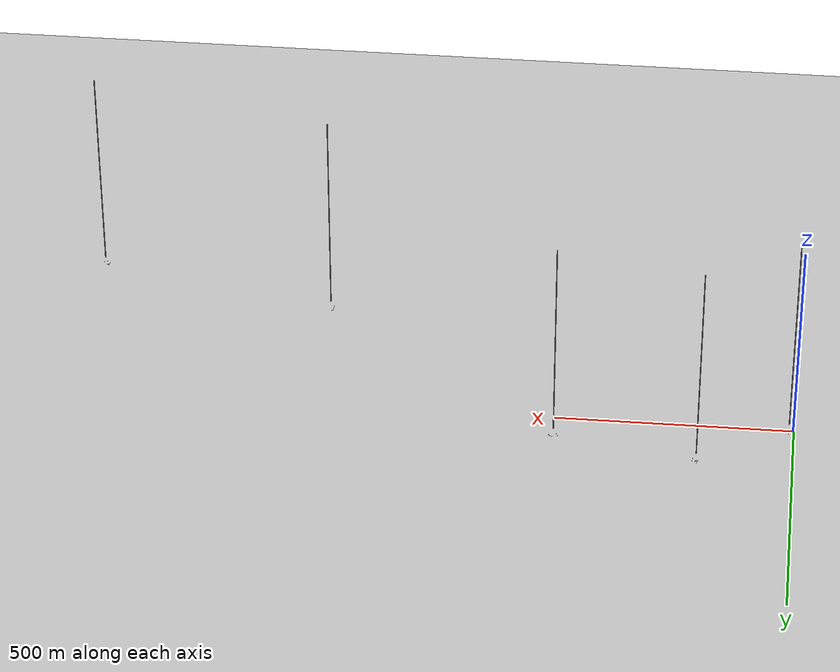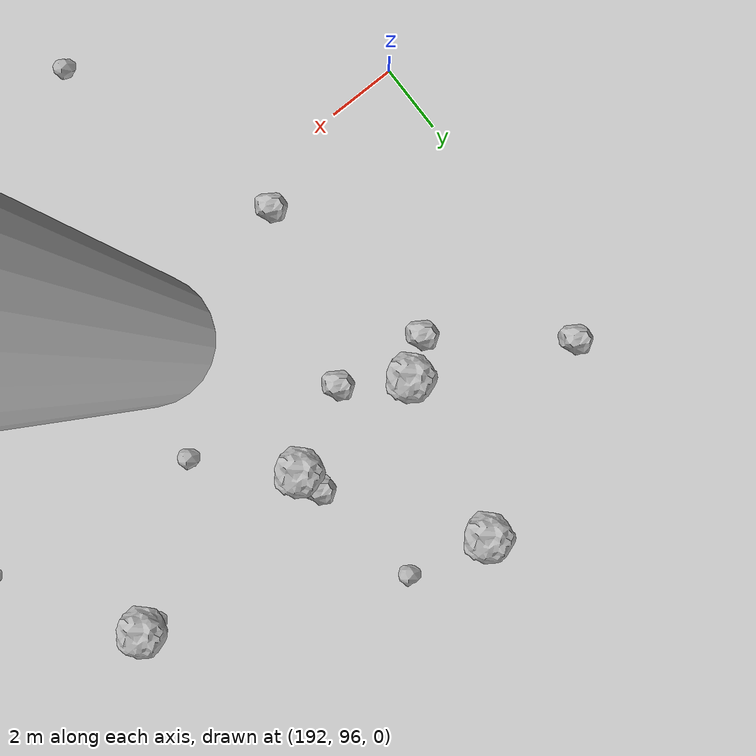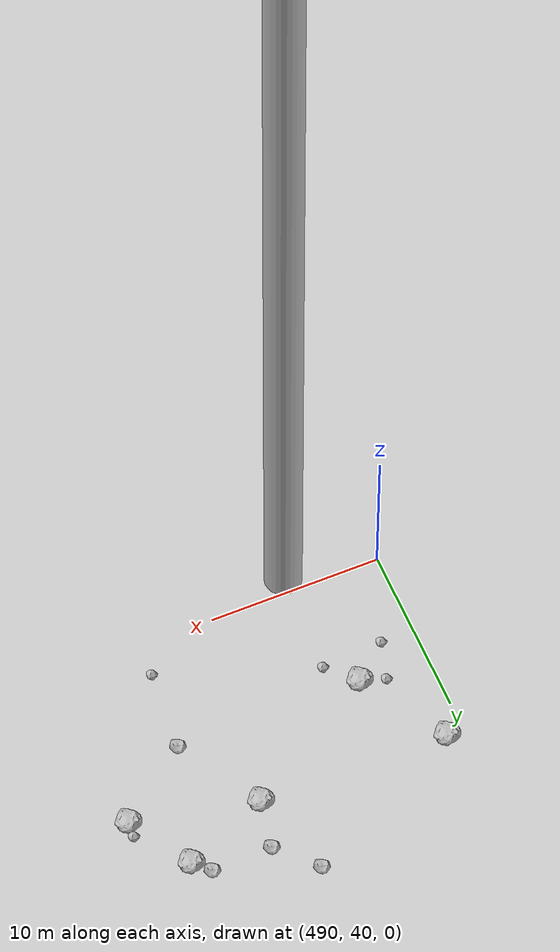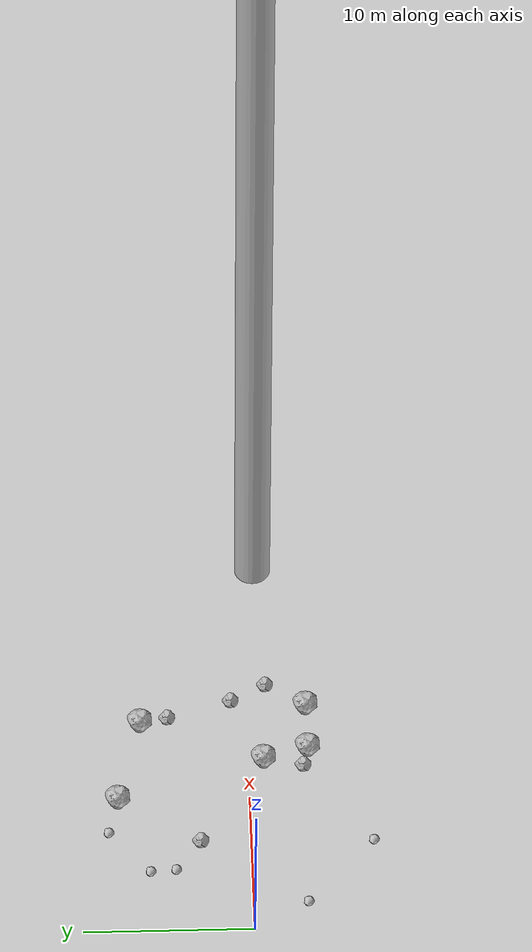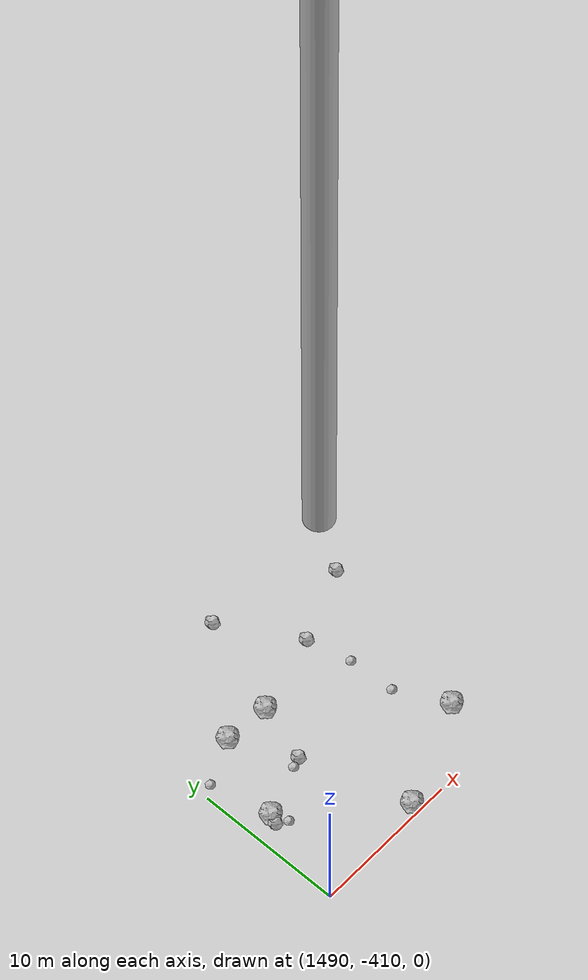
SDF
<?xml version="1.0" ?>
<sdf version="1.6">
  <world name="default">

    <include>
      <uri>model://custom_ground</uri>
    </include>

    <include>
      <uri>model://sun</uri>
    </include>

    <spherical_coordinates>
      <surface_model>EARTH_WGS84</surface_model>
      <latitude_deg>38.161479</latitude_deg>
      <longitude_deg>-122.454630</longitude_deg>
      <elevation>488.0</elevation>
      <heading_deg>90</heading_deg>
    </spherical_coordinates>

    <model name="rock1_0_0">
      <include>
        <uri>model://rock1</uri>
        <pose>15.907301857648497 6.489901103908981 0.5 0 0 0</pose>
      </include>
    </model>
    <model name="rock1_0_1">
      <include>
        <uri>model://rock1</uri>
        <pose>12.907732100470854 -0.8413843972878858 0.5 0 0 0</pose>
      </include>
    </model>
    <model name="rock1_0_2">
      <include>
        <uri>model://rock1</uri>
        <pose>13.749585482902747 -3.502271855725196 0.5 0 0 0</pose>
      </include>
    </model>
    <model name="rock1_0_3">
      <include>
        <uri>model://rock1</uri>
        <pose>17.06188978615804 -3.476333477579516 0.5 0 0 0</pose>
      </include>
    </model>
    <model name="rock1_0_4">
      <include>
        <uri>model://rock1</uri>
        <pose>9.948622795796965 7.887656499904647 0.5 0 0 0</pose>
      </include>
    </model>
    <model name="rock2_0_0">
      <include>
        <uri>model://rock2</uri>
        <pose>16.17602657186244 4.848380039496451 0.3 0 0 0</pose>
      </include>
    </model>
    <model name="rock2_0_1">
      <include>
        <uri>model://rock2</uri>
        <pose>12.305745284944766 -3.1956894103419575 0.3 0 0 0</pose>
      </include>
    </model>
    <model name="rock2_0_2">
      <include>
        <uri>model://rock2</uri>
        <pose>18.655321708111256 -1.0939853626651708 0.3 0 0 0</pose>
      </include>
    </model>
    <model name="rock2_0_3">
      <include>
        <uri>model://rock2</uri>
        <pose>6.566677929779779 3.034578369964496 0.3 0 0 0</pose>
      </include>
    </model>
    <model name="rock2_0_4">
      <include>
        <uri>model://rock2</uri>
        <pose>17.43890114849888 1.0111477956492791 0.3 0 0 0</pose>
      </include>
    </model>
    <model name="rock3_0_0">
      <include>
        <uri>model://rock3</uri>
        <pose>7.352778677137537 8.424048382840926 0.2 0 0 0</pose>
      </include>
    </model>
    <model name="rock3_0_1">
      <include>
        <uri>model://rock3</uri>
        <pose>4.455181389330445 4.492471919717536 0.2 0 0 0</pose>
      </include>
    </model>
    <model name="rock3_0_2">
      <include>
        <uri>model://rock3</uri>
        <pose>4.347250476960385 5.996381989320792 0.2 0 0 0</pose>
      </include>
    </model>
    <model name="rock3_0_3">
      <include>
        <uri>model://rock3</uri>
        <pose>1.887650376879333 -3.1926813572410406 0.2 0 0 0</pose>
      </include>
    </model>
    <model name="rock3_0_4">
      <include>
        <uri>model://rock3</uri>
        <pose>6.468960847298957 -7.199354066243517 0.2 0 0 0</pose>
      </include>
    </model>
    <model name="rock1_1_0">
      <include>
        <uri>model://rock1</uri>
        <pose>201.08061978224205 103.33364295823614 0.5 0 0 0</pose>
      </include>
    </model>
    <model name="rock1_1_1">
      <include>
        <uri>model://rock1</uri>
        <pose>207.34243145572538 104.11533548592426 0.5 0 0 0</pose>
      </include>
    </model>
    <model name="rock1_1_2">
      <include>
        <uri>model://rock1</uri>
        <pose>206.19298106471075 95.24036940309738 0.5 0 0 0</pose>
      </include>
    </model>
    <model name="rock1_1_3">
      <include>
        <uri>model://rock1</uri>
        <pose>196.96992556681715 103.18738371711434 0.5 0 0 0</pose>
      </include>
    </model>
    <model name="rock1_1_4">
      <include>
        <uri>model://rock1</uri>
        <pose>198.05008341025976 108.0694069212268 0.5 0 0 0</pose>
      </include>
    </model>
    <model name="rock2_1_0">
      <include>
        <uri>model://rock2</uri>
        <pose>195.92531811482624 102.46032398083108 0.3 0 0 0</pose>
      </include>
    </model>
    <model name="rock2_1_1">
      <include>
        <uri>model://rock2</uri>
        <pose>198.67238478784637 102.09634818027747 0.3 0 0 0</pose>
      </include>
    </model>
    <model name="rock2_1_2">
      <include>
        <uri>model://rock2</uri>
        <pose>200.90342685744133 104.0777594005414 0.3 0 0 0</pose>
      </include>
    </model>
    <model name="rock2_1_3">
      <include>
        <uri>model://rock2</uri>
        <pose>197.03161812497117 96.98084637715432 0.3 0 0 0</pose>
      </include>
    </model>
    <model name="rock2_1_4">
      <include>
        <uri>model://rock2</uri>
        <pose>192.59815427406997 105.24665189240126 0.3 0 0 0</pose>
      </include>
    </model>
    <model name="rock3_1_0">
      <include>
        <uri>model://rock3</uri>
        <pose>206.8396173637082 104.10565362628643 0.2 0 0 0</pose>
      </include>
    </model>
    <model name="rock3_1_1">
      <include>
        <uri>model://rock3</uri>
        <pose>203.25532511214752 101.0668641784675 0.2 0 0 0</pose>
      </include>
    </model>
    <model name="rock3_1_2">
      <include>
        <uri>model://rock3</uri>
        <pose>209.72762094709884 100.21448986400313 0.2 0 0 0</pose>
      </include>
    </model>
    <model name="rock3_1_3">
      <include>
        <uri>model://rock3</uri>
        <pose>199.15083048693523 90.22585488649453 0.2 0 0 0</pose>
      </include>
    </model>
    <model name="rock3_1_4">
      <include>
        <uri>model://rock3</uri>
        <pose>200.40720945041318 107.53379221855656 0.2 0 0 0</pose>
      </include>
    </model>
    <model name="rock1_2_0">
      <include>
        <uri>model://rock1</uri>
        <pose>509.1632690105297 50.12574143133219 0.5 0 0 0</pose>
      </include>
    </model>
    <model name="rock1_2_1">
      <include>
        <uri>model://rock1</uri>
        <pose>502.0330682538583 51.701914367604026 0.5 0 0 0</pose>
      </include>
    </model>
    <model name="rock1_2_2">
      <include>
        <uri>model://rock1</uri>
        <pose>491.061848003436 51.907849805266714 0.5 0 0 0</pose>
      </include>
    </model>
    <model name="rock1_2_3">
      <include>
        <uri>model://rock1</uri>
        <pose>506.97862142117174 53.753293244841004 0.5 0 0 0</pose>
      </include>
    </model>
    <model name="rock1_2_4">
      <include>
        <uri>model://rock1</uri>
        <pose>494.09976282104077 46.89019696600993 0.5 0 0 0</pose>
      </include>
    </model>
    <model name="rock2_2_0">
      <include>
        <uri>model://rock2</uri>
        <pose>502.5704616061517 54.51573030785714 0.3 0 0 0</pose>
      </include>
    </model>
    <model name="rock2_2_1">
      <include>
        <uri>model://rock2</uri>
        <pose>506.07806020935493 54.56943276955431 0.3 0 0 0</pose>
      </include>
    </model>
    <model name="rock2_2_2">
      <include>
        <uri>model://rock2</uri>
        <pose>500.54235670541556 56.6666759168812 0.3 0 0 0</pose>
      </include>
    </model>
    <model name="rock2_2_3">
      <include>
        <uri>model://rock2</uri>
        <pose>506.7387804290952 53.42314422898485 0.3 0 0 0</pose>
      </include>
    </model>
    <model name="rock2_2_4">
      <include>
        <uri>model://rock2</uri>
        <pose>504.8631493049676 46.766025833261594 0.3 0 0 0</pose>
      </include>
    </model>
    <model name="rock3_2_0">
      <include>
        <uri>model://rock3</uri>
        <pose>492.6077234735259 47.24693378888451 0.2 0 0 0</pose>
      </include>
    </model>
    <model name="rock3_2_1">
      <include>
        <uri>model://rock3</uri>
        <pose>495.5350292378518 45.20810272383373 0.2 0 0 0</pose>
      </include>
    </model>
    <model name="rock3_2_2">
      <include>
        <uri>model://rock3</uri>
        <pose>504.4083308248107 41.96370555833404 0.2 0 0 0</pose>
      </include>
    </model>
    <model name="rock3_2_3">
      <include>
        <uri>model://rock3</uri>
        <pose>509.16128253830516 50.92852522916469 0.2 0 0 0</pose>
      </include>
    </model>
    <model name="rock3_2_4">
      <include>
        <uri>model://rock3</uri>
        <pose>491.94483371404283 44.982224827549246 0.2 0 0 0</pose>
      </include>
    </model>
    <model name="rock1_3_0">
      <include>
        <uri>model://rock1</uri>
        <pose>993.3318072994657 -305.3963668910886 0.5 0 0 0</pose>
      </include>
    </model>
    <model name="rock1_3_1">
      <include>
        <uri>model://rock1</uri>
        <pose>994.8279264101994 -294.5670464955336 0.5 0 0 0</pose>
      </include>
    </model>
    <model name="rock1_3_2">
      <include>
        <uri>model://rock1</uri>
        <pose>994.3916846231514 -298.902093272776 0.5 0 0 0</pose>
      </include>
    </model>
    <model name="rock1_3_3">
      <include>
        <uri>model://rock1</uri>
        <pose>997.756831801298 -291.3756331333953 0.5 0 0 0</pose>
      </include>
    </model>
    <model name="rock1_3_4">
      <include>
        <uri>model://rock1</uri>
        <pose>1004.77118971677 -302.2137079121977 0.5 0 0 0</pose>
      </include>
    </model>
    <model name="rock2_3_0">
      <include>
        <uri>model://rock2</uri>
        <pose>996.9043357961962 -306.1983308716832 0.3 0 0 0</pose>
      </include>
    </model>
    <model name="rock2_3_1">
      <include>
        <uri>model://rock2</uri>
        <pose>994.9112253366649 -293.96670080757826 0.3 0 0 0</pose>
      </include>
    </model>
    <model name="rock2_3_2">
      <include>
        <uri>model://rock2</uri>
        <pose>998.8704137249769 -290.69823586896507 0.3 0 0 0</pose>
      </include>
    </model>
    <model name="rock2_3_3">
      <include>
        <uri>model://rock2</uri>
        <pose>1002.8027708049204 -298.7831954502158 0.3 0 0 0</pose>
      </include>
    </model>
    <model name="rock2_3_4">
      <include>
        <uri>model://rock2</uri>
        <pose>1000.9815538530294 -302.6388256928011 0.3 0 0 0</pose>
      </include>
    </model>
    <model name="rock3_3_0">
      <include>
        <uri>model://rock3</uri>
        <pose>1002.9494080585954 -304.4846467747116 0.2 0 0 0</pose>
      </include>
    </model>
    <model name="rock3_3_1">
      <include>
        <uri>model://rock3</uri>
        <pose>992.766973866559 -294.3364974224979 0.2 0 0 0</pose>
      </include>
    </model>
    <model name="rock3_3_2">
      <include>
        <uri>model://rock3</uri>
        <pose>998.346681983322 -295.06379279774006 0.2 0 0 0</pose>
      </include>
    </model>
    <model name="rock3_3_3">
      <include>
        <uri>model://rock3</uri>
        <pose>1001.7497383637003 -308.0777205954632 0.2 0 0 0</pose>
      </include>
    </model>
    <model name="rock3_3_4">
      <include>
        <uri>model://rock3</uri>
        <pose>1003.6742284523318 -302.22229976848473 0.2 0 0 0</pose>
      </include>
    </model>
    <model name="rock1_4_0">
      <include>
        <uri>model://rock1</uri>
        <pose>1496.956200491669 -398.40468533485085 0.5 0 0 0</pose>
      </include>
    </model>
    <model name="rock1_4_1">
      <include>
        <uri>model://rock1</uri>
        <pose>1498.0261167103251 -409.4393168284009 0.5 0 0 0</pose>
      </include>
    </model>
    <model name="rock1_4_2">
      <include>
        <uri>model://rock1</uri>
        <pose>1493.8525507945453 -398.1573992013135 0.5 0 0 0</pose>
      </include>
    </model>
    <model name="rock1_4_3">
      <include>
        <uri>model://rock1</uri>
        <pose>1504.856850479831 -406.5679027597847 0.5 0 0 0</pose>
      </include>
    </model>
    <model name="rock1_4_4">
      <include>
        <uri>model://rock1</uri>
        <pose>1491.712908812593 -403.6707292155922 0.5 0 0 0</pose>
      </include>
    </model>
    <model name="rock2_4_0">
      <include>
        <uri>model://rock2</uri>
        <pose>1495.777417763403 -402.13478931768 0.3 0 0 0</pose>
      </include>
    </model>
    <model name="rock2_4_1">
      <include>
        <uri>model://rock2</uri>
        <pose>1502.2902422073107 -396.875549070338 0.3 0 0 0</pose>
      </include>
    </model>
    <model name="rock2_4_2">
      <include>
        <uri>model://rock2</uri>
        <pose>1507.2413517354412 -394.8326258369301 0.3 0 0 0</pose>
      </include>
    </model>
    <model name="rock2_4_3">
      <include>
        <uri>model://rock2</uri>
        <pose>1491.4547603297046 -404.19658093549646 0.3 0 0 0</pose>
      </include>
    </model>
    <model name="rock2_4_4">
      <include>
        <uri>model://rock2</uri>
        <pose>1499.2868694729734 -391.77596454667423 0.3 0 0 0</pose>
      </include>
    </model>
    <model name="rock3_4_0">
      <include>
        <uri>model://rock3</uri>
        <pose>1503.1618264961535 -403.1503411967837 0.2 0 0 0</pose>
      </include>
    </model>
    <model name="rock3_4_1">
      <include>
        <uri>model://rock3</uri>
        <pose>1502.9980556480782 -399.926254344105 0.2 0 0 0</pose>
      </include>
    </model>
    <model name="rock3_4_2">
      <include>
        <uri>model://rock3</uri>
        <pose>1495.0973336435775 -402.3992139905347 0.2 0 0 0</pose>
      </include>
    </model>
    <model name="rock3_4_3">
      <include>
        <uri>model://rock3</uri>
        <pose>1492.1287475127142 -404.72904117005237 0.2 0 0 0</pose>
      </include>
    </model>
    <model name="rock3_4_4">
      <include>
        <uri>model://rock3</uri>
        <pose>1490.7866276878656 -399.51585015019054 0.2 0 0 0</pose>
      </include>
    </model>

    <model name="cylinder_1">
      <static>true</static>
      <link name="link">
        <visual name="visual">
          <geometry>
            <cylinder>
              <radius>1</radius>
              <length>500</length>
            </cylinder>
          </geometry>
        </visual>
      </link>
      <pose>10 0 270 0 0 0</pose>
    </model>

    <model name="cylinder_2">
      <static>true</static>
      <link name="link">
        <visual name="visual">
          <geometry>
            <cylinder>
              <radius>1</radius>
              <length>500</length>
            </cylinder>
          </geometry>
        </visual>
      </link>
      <pose>200 100 270 0 0 0</pose>
    </model>

    <model name="cylinder_3">
      <static>true</static>
      <link name="link">
        <visual name="visual">
          <geometry>
            <cylinder>
              <radius>1</radius>
              <length>500</length>
            </cylinder>
          </geometry>
        </visual>
      </link>
      <pose>500 50 270 0 0 0</pose>
    </model>

    <model name="cylinder_4">
      <static>true</static>
      <link name="link">
        <visual name="visual">
          <geometry>
            <cylinder>
              <radius>1</radius>
              <length>500</length>
            </cylinder>
          </geometry>
        </visual>
      </link>
      <pose>1000 -300 270 0 0 0</pose>
    </model>

    <model name="cylinder_5">
      <static>true</static>
      <link name="link">
        <visual name="visual">
          <geometry>
            <cylinder>
              <radius>1</radius>
              <length>500</length>
            </cylinder>
          </geometry>
        </visual>
      </link>
      <pose>1500 -400 270 0 0 0</pose>
    </model>

  </world>
</sdf>

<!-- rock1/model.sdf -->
<sdf version="1.6">
  <model name="rock1">
    <static>true</static> <!-- Set to true if the model should not move -->
    <pose>0 0 0 0 0 0</pose>

    <!--z offset is 0.5 for full scale-->

    <link name="link">
      <collision name="rock1_collision">
        <geometry>
          <mesh>
            <uri>model://meshes/rock1.dae</uri>
          </mesh>
        </geometry>
      </collision>
      <visual name="rock1_visual">
        <geometry>
          <mesh>
            <uri>model://meshes/rock1.dae</uri>
          </mesh>
        </geometry>
        <material>
          <script>
            <uri>model://materials/scripts/sand_pebbles.material</uri>
            <name>custom_ground/Image</name>
          </script>
        </material>
      </visual>
    </link>
  </model>
</sdf>

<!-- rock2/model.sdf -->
<sdf version="1.6">
  <model name="rock2">
    <static>true</static> <!-- Set to true if the model should not move -->
    <pose>0 0 0 0 0 0</pose>

    <!--z offset is 0.3 for full scale-->

    <link name="link">
      <collision name="rock2_collision">
        <geometry>
          <mesh>
            <uri>model://meshes/rock2.dae</uri>
          </mesh>
        </geometry>
      </collision>
      <visual name="rock2_visual">
        <geometry>
          <mesh>
            <uri>model://meshes/rock2.dae</uri>
          </mesh>
        </geometry>
        <material>
          <script>
            <uri>model://materials/scripts/sand_pebbles.material</uri>
            <name>custom_ground/Image</name>
          </script>
        </material>
      </visual>
    </link>
  </model>
</sdf>

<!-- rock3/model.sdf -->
<sdf version="1.6">
  <model name="rock3">
    <static>true</static> <!-- Set to true if the model should not move -->
    <pose>0 0 0 0 0 0</pose>

    <!--z offset is 0.2 for full scale-->

    <link name="link">
      <collision name="rock3_collision">
        <geometry>
          <mesh>
            <uri>model://meshes/rock3.dae</uri>
          </mesh>
        </geometry>
      </collision>
      <visual name="rock3_visual">
        <geometry>
          <mesh>
            <uri>model://meshes/rock3.dae</uri>
          </mesh>
        </geometry>
        <material>
          <script>
            <uri>model://materials/scripts/sand_pebbles.material</uri>
            <name>custom_ground/Image</name>
          </script>
        </material>
      </visual>
    </link>
  </model>
</sdf>

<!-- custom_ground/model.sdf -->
<sdf version="1.6">
  <model name="custom_ground">
    <static>true</static> <!-- Ground is static and immovable -->
    <link name="ground_link">
      <pose>240 0 0 0 0 0</pose> <!-- Position and orientation relative to the world -->
      <!-- Visual Representation -->
      <visual name="ground_visual">
        <geometry>
          <plane>
            <normal>0 0 1</normal> <!-- Upward facing plane -->
            <size>500 500</size> <!-- Size of the plane -->
          </plane>
        </geometry>
        <material>
          <script>
            <uri>model://materials/scripts/sand_pebbles.material</uri>
            <name>custom_ground/Image</name>
          </script>
        </material>
      </visual>

      <!-- Collision Representation -->
      <collision name="ground_collision">
        <geometry>
          <plane>
            <normal>0 0 1</normal>
            <size>100 100</size>
          </plane>
        </geometry>
      </collision>

    </link>
  </model>
</sdf>
